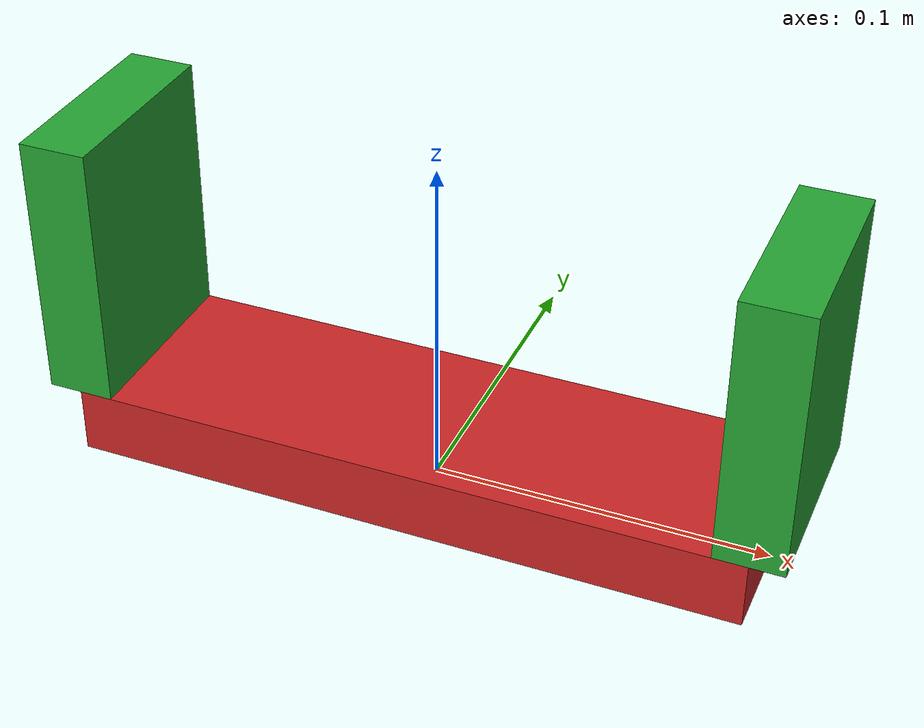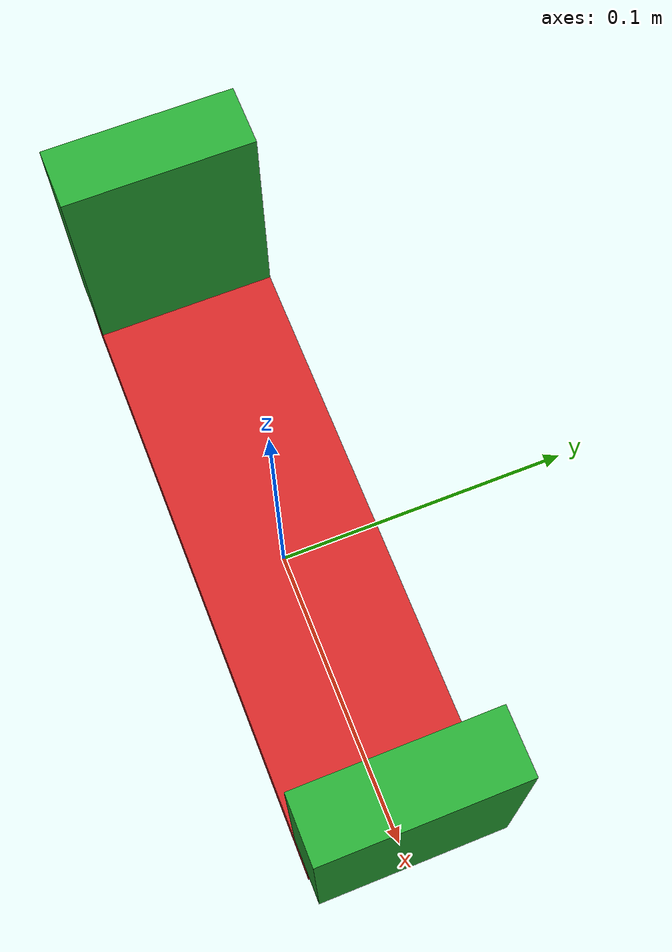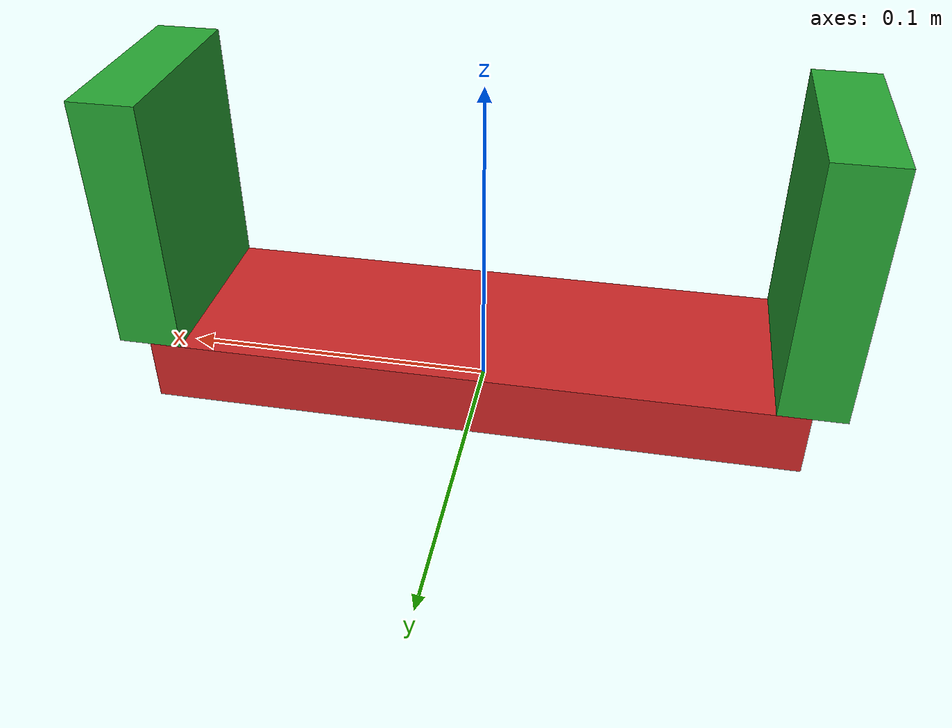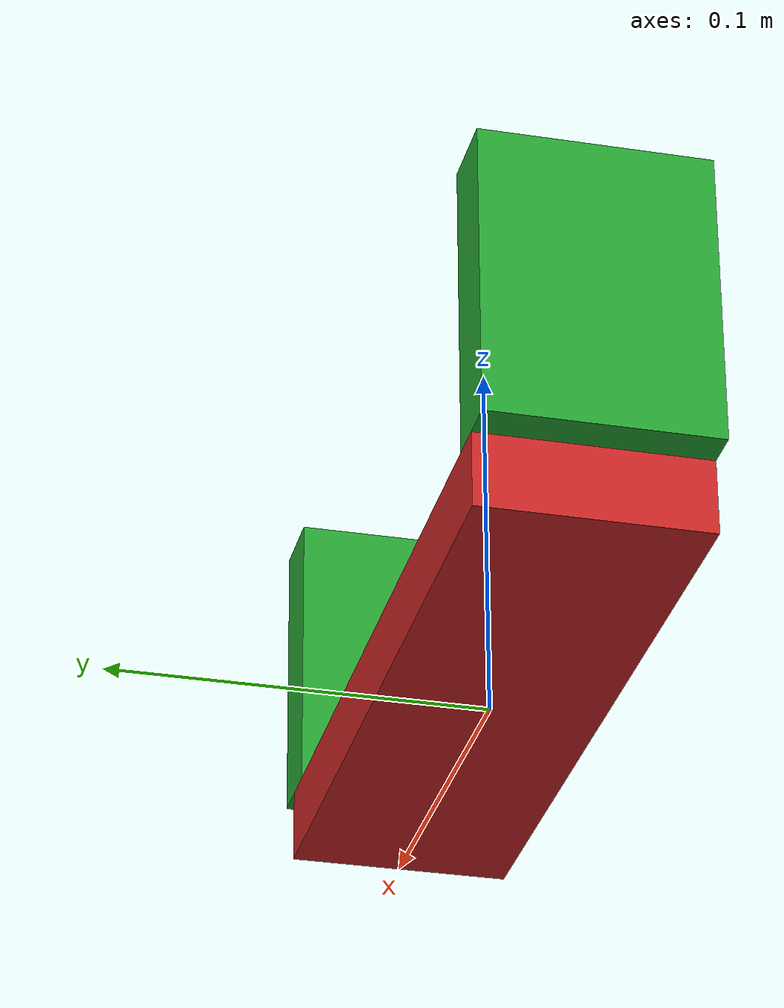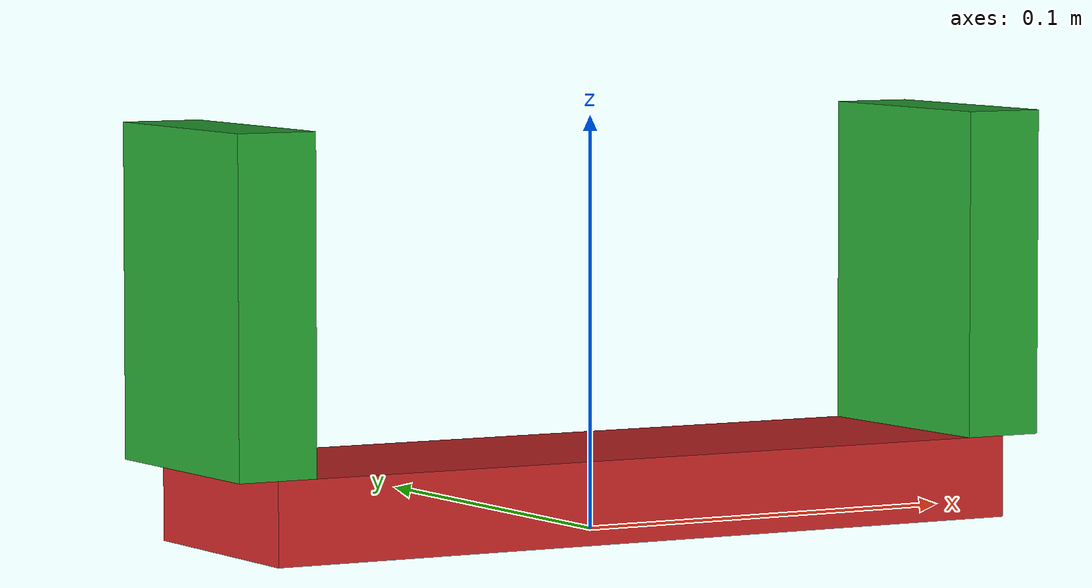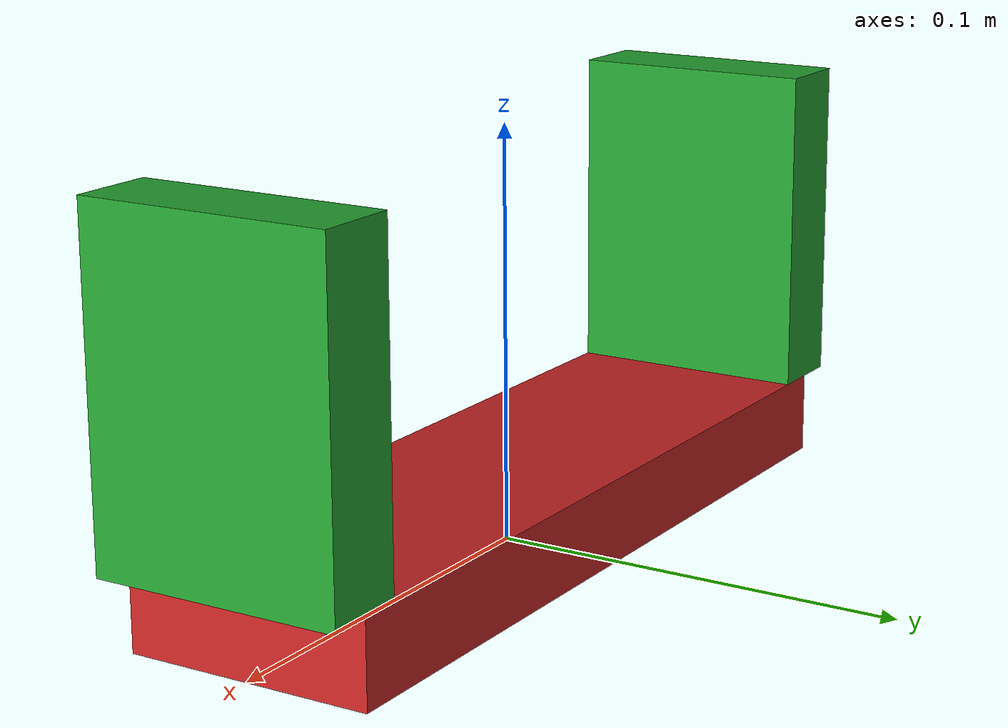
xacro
<?xml version="1.0"?>
<robot xmlns:xacro="http://www.ros.org/wiki/xacro">

    <link name="gripper_base_link">
        <visual>
            <origin xyz="0 0 0.01" rpy="0 0 0" />
            <geometry>
                <box size="0.2 0.06 0.02" />
            </geometry>
            <material name="dark_red" />
        </visual>
        <collision>
            <origin xyz="0 0 0.01" rpy="0 0 0" />
            <geometry>
                <box size="0.2 0.06 0.02" />
            </geometry>
        </collision>
    </link>

    <link name="gripper_left_link">
        <visual>
            <origin xyz="0 0 0.04" rpy="0 0 0" />
            <geometry>
                <box size="0.02 0.06 0.08" />
            </geometry>
            <material name="dark_green" />
        </visual>
        <collision>
            <origin xyz="0 0 0.04" rpy="0 0 0" />
            <geometry>
                <box size="0.02 0.06 0.08" />
            </geometry>
        </collision>
        <xacro:box_inertia m="0.1" x="0.02" y="0.06" z="0.08" o_xyz="0 0 0.04" o_rpy="0 0 0" />
    </link>

    <joint name="gripper_left_finger_joint" type="prismatic">
        <parent link="gripper_base_link" />
        <child link="gripper_left_link" />
        <origin xyz="-0.1 0.0 0.02" rpy="0 0 0" />
        <axis xyz="1 0 0" />
        <limit lower="0.0" upper="0.09" effort="1000.0" velocity="1.0" />
    </joint>

    <link name="gripper_right_link">
        <visual>
            <origin xyz="0 0 0.04" rpy="0 0 0" />
            <geometry>
                <box size="0.02 0.06 0.08" />
            </geometry>
            <material name="dark_green" />
        </visual>
        <collision>
            <origin xyz="0 0 0.04" rpy="0 0 0" />
            <geometry>
                <box size="0.02 0.06 0.08" />
            </geometry>
        </collision>
        <xacro:box_inertia m="0.1" x="0.02" y="0.06" z="0.08" o_xyz="0 0 0.04" o_rpy="0 0 0" />
    </link>

    <joint name="gripper_right_finger_joint" type="prismatic">
        <parent link="gripper_base_link" />
        <child link="gripper_right_link" />
        <origin xyz="0.1 0.0 0.02" rpy="0 0 0" />
        <axis xyz="1 0 0" />
        <mimic joint="gripper_left_finger_joint" multiplier="-1.0" />
        <limit lower="-0.09" upper="0.00" effort="1000.0" velocity="1.0" />
    </joint>

</robot>
